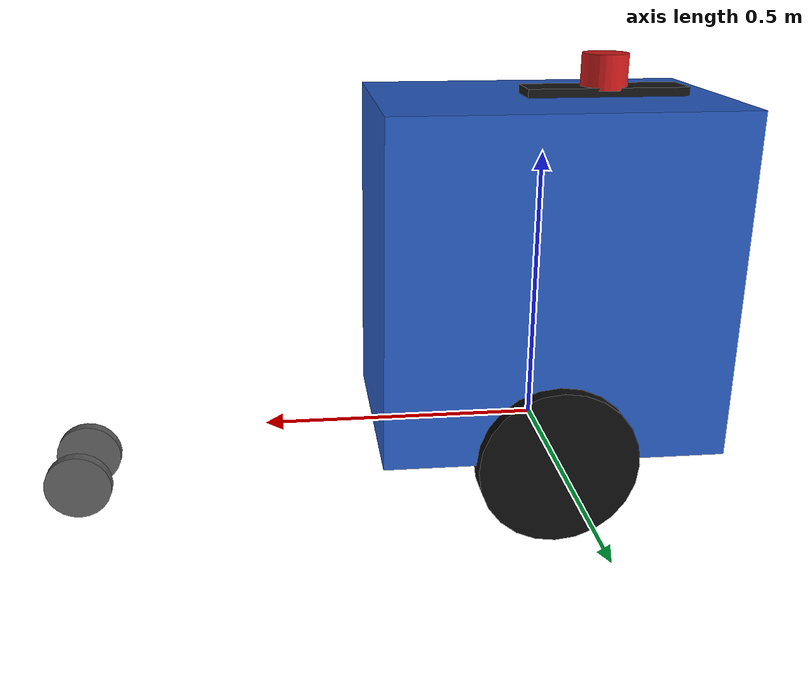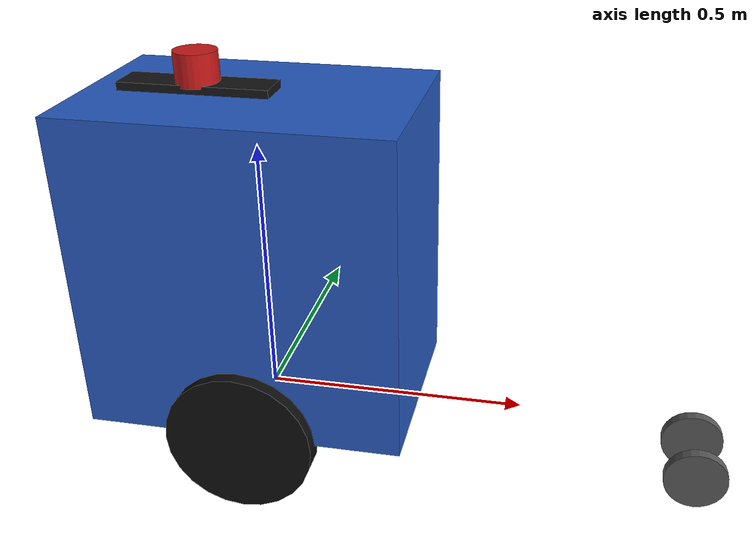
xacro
<?xml version="1.0"?>
<robot name="trolley_mode_b" xmlns:xacro="http://www.ros.org/wiki/xacro">
  <!-- Mode B measurements, converted from centimetres to SI units. -->
  <xacro:property name="wheel_r" value="0.14"/>
  <xacro:property name="wheel_w" value="0.05"/>
  <xacro:property name="wheel_sep" value="0.40"/>
  <xacro:property name="caster_r" value="0.06"/>
  <xacro:property name="caster_w" value="0.02"/>
  <xacro:property name="caster_sep" value="0.12"/>
  <xacro:property name="caster_wheelbase" value="0.80"/>
  <xacro:property name="caster_offset" value="0.04"/>

  <!-- base_link origin: centre of driven axle, at axle height (0.14 m). -->
  <link name="base_link">
    <visual>
      <!-- Bottom of the 0.60 m body sits at driven-axle height, not on ground. -->
      <origin xyz="0 0 0.30"/>
      <geometry><box size="0.60 0.40 0.60"/></geometry>
      <material name="blue"><color rgba="0.15 0.35 0.75 1"/></material>
    </visual>
    <collision>
      <origin xyz="0 0 0.30"/>
      <geometry><box size="0.60 0.40 0.60"/></geometry>
    </collision>
    <inertial>
      <origin xyz="0.10 0 0"/>
      <mass value="12.0"/>
      <inertia ixx="0.52" ixy="0" ixz="0" iyy="0.72" iyz="0" izz="0.52"/>
    </inertial>
  </link>

  <xacro:macro name="drive_wheel" params="side y">
    <link name="wheel_${side}">
      <visual><geometry><cylinder radius="${wheel_r}" length="${wheel_w}"/></geometry>
        <material name="black"><color rgba="0.05 0.05 0.05 1"/></material></visual>
      <collision><geometry><cylinder radius="${wheel_r}" length="${wheel_w}"/></geometry></collision>
      <inertial><mass value="0.7"/><inertia ixx="0.007" ixy="0" ixz="0" iyy="0.007" iyz="0" izz="0.014"/></inertial>
    </link>
    <joint name="joint_wheel_${side}" type="continuous">
      <parent link="base_link"/><child link="wheel_${side}"/>
      <origin xyz="0 ${y} 0" rpy="${pi/2} 0 0"/>
      <axis xyz="0 0 1"/>
      <dynamics damping="0.02" friction="0.01"/>
    </joint>
  </xacro:macro>
  <xacro:drive_wheel side="left" y="${wheel_sep/2}"/>
  <xacro:drive_wheel side="right" y="${-wheel_sep/2}"/>

  <!-- Two independently swivelling caster wheels. -->
  <xacro:macro name="caster" params="side y">
    <link name="caster_swivel_${side}">
      <inertial><mass value="0.05"/><inertia ixx="0.0001" ixy="0" ixz="0" iyy="0.0001" iyz="0" izz="0.0001"/></inertial>
    </link>
    <joint name="caster_swivel_joint_${side}" type="continuous">
      <parent link="base_link"/><child link="caster_swivel_${side}"/>
      <origin xyz="${caster_wheelbase} ${y} 0"/>
      <axis xyz="0 0 1"/><dynamics damping="0.04" friction="0.01"/>
    </joint>
    <link name="caster_wheel_${side}">
      <visual><geometry><cylinder radius="${caster_r}" length="${caster_w}"/></geometry>
        <material name="gray"><color rgba="0.35 0.35 0.35 1"/></material></visual>
      <collision><geometry><cylinder radius="${caster_r}" length="${caster_w}"/></geometry></collision>
      <inertial><mass value="0.10"/><inertia ixx="0.0002" ixy="0" ixz="0" iyy="0.0002" iyz="0" izz="0.00035"/></inertial>
    </link>
    <joint name="caster_wheel_joint_${side}" type="continuous">
      <parent link="caster_swivel_${side}"/><child link="caster_wheel_${side}"/>
      <origin xyz="${caster_offset} 0 ${caster_r-wheel_r}" rpy="${pi/2} 0 0"/>
      <axis xyz="0 0 1"/><dynamics damping="0.01" friction="0.005"/>
    </joint>
  </xacro:macro>
  <xacro:caster side="left" y="${caster_sep/2}"/>
  <xacro:caster side="right" y="${-caster_sep/2}"/>

  <link name="base_laser">
    <visual><geometry><cylinder radius="0.04" length="0.06"/></geometry>
      <material name="red"><color rgba="0.8 0.1 0.1 1"/></material></visual>
    <inertial><mass value="0.10"/><inertia ixx="0.001" ixy="0" ixz="0" iyy="0.001" iyz="0" izz="0.001"/></inertial>
  </link>
  <joint name="lidar_joint" type="fixed">
    <parent link="base_link"/><child link="base_laser"/>
    <origin xyz="-0.10 0 ${0.78-wheel_r}" rpy="0 0 0"/>
  </joint>

  <link name="kinect_link">
    <visual><geometry><box size="0.28 0.07 0.07"/></geometry>
      <material name="kinect"><color rgba="0.08 0.08 0.08 1"/></material></visual>
    <inertial><mass value="0.29"/><inertia ixx="0.001" ixy="0" ixz="0" iyy="0.002" iyz="0" izz="0.002"/></inertial>
  </link>
  <joint name="kinect_joint" type="fixed">
    <parent link="base_link"/><child link="kinect_link"/>
    <origin xyz="-0.10 0 ${0.72-wheel_r}" rpy="0 0 0"/>
  </joint>

  <link name="imu_link"><inertial><mass value="0.01"/><inertia ixx="0.00001" ixy="0" ixz="0" iyy="0.00001" iyz="0" izz="0.00001"/></inertial></link>
  <joint name="imu_joint" type="fixed"><parent link="base_link"/><child link="imu_link"/><origin xyz="0.10 0 0"/></joint>

  <gazebo>
    <plugin filename="gz-sim-diff-drive-system" name="gz::sim::systems::DiffDrive">
      <left_joint>joint_wheel_left</left_joint><right_joint>joint_wheel_right</right_joint>
      <wheel_separation>${wheel_sep}</wheel_separation><wheel_radius>${wheel_r}</wheel_radius>
      <max_linear_velocity>0.40</max_linear_velocity><max_angular_velocity>0.70</max_angular_velocity>
      <!-- Provisional until loaded-ground acceleration is measured. -->
      <max_linear_acceleration>0.50</max_linear_acceleration>
      <min_linear_acceleration>-0.50</min_linear_acceleration>
      <max_angular_acceleration>1.00</max_angular_acceleration>
      <min_angular_acceleration>-1.00</min_angular_acceleration>
      <topic>cmd_vel</topic><odom_topic>odom</odom_topic><frame_id>odom</frame_id><child_frame_id>base_link</child_frame_id>
    </plugin>
    <plugin filename="gz-sim-joint-state-publisher-system" name="gz::sim::systems::JointStatePublisher">
      <topic>joint_states</topic>
      <joint_name>joint_wheel_left</joint_name>
      <joint_name>joint_wheel_right</joint_name>
      <joint_name>caster_swivel_joint_left</joint_name>
      <joint_name>caster_swivel_joint_right</joint_name>
    </plugin>
  </gazebo>
  <gazebo reference="base_laser">
    <sensor name="lidar" type="gpu_lidar"><always_on>true</always_on><update_rate>10</update_rate><topic>scan</topic>
      <lidar><scan><horizontal><samples>360</samples><resolution>1</resolution><min_angle>-3.14159</min_angle><max_angle>3.14159</max_angle></horizontal></scan>
        <range><min>0.10</min><max>8.0</max><resolution>0.01</resolution></range></lidar>
    </sensor>
  </gazebo>
  <gazebo reference="imu_link">
    <sensor name="mpu9250" type="imu"><always_on>true</always_on><update_rate>200</update_rate><topic>imu/data_raw</topic>
      <imu><angular_velocity>
        <x><noise type="gaussian"><mean>0</mean><stddev>0.004</stddev></noise></x>
        <y><noise type="gaussian"><mean>0</mean><stddev>0.004</stddev></noise></y>
        <z><noise type="gaussian"><mean>-0.00024</mean><stddev>0.004</stddev></noise></z>
      </angular_velocity></imu>
    </sensor>
  </gazebo>
</robot>
